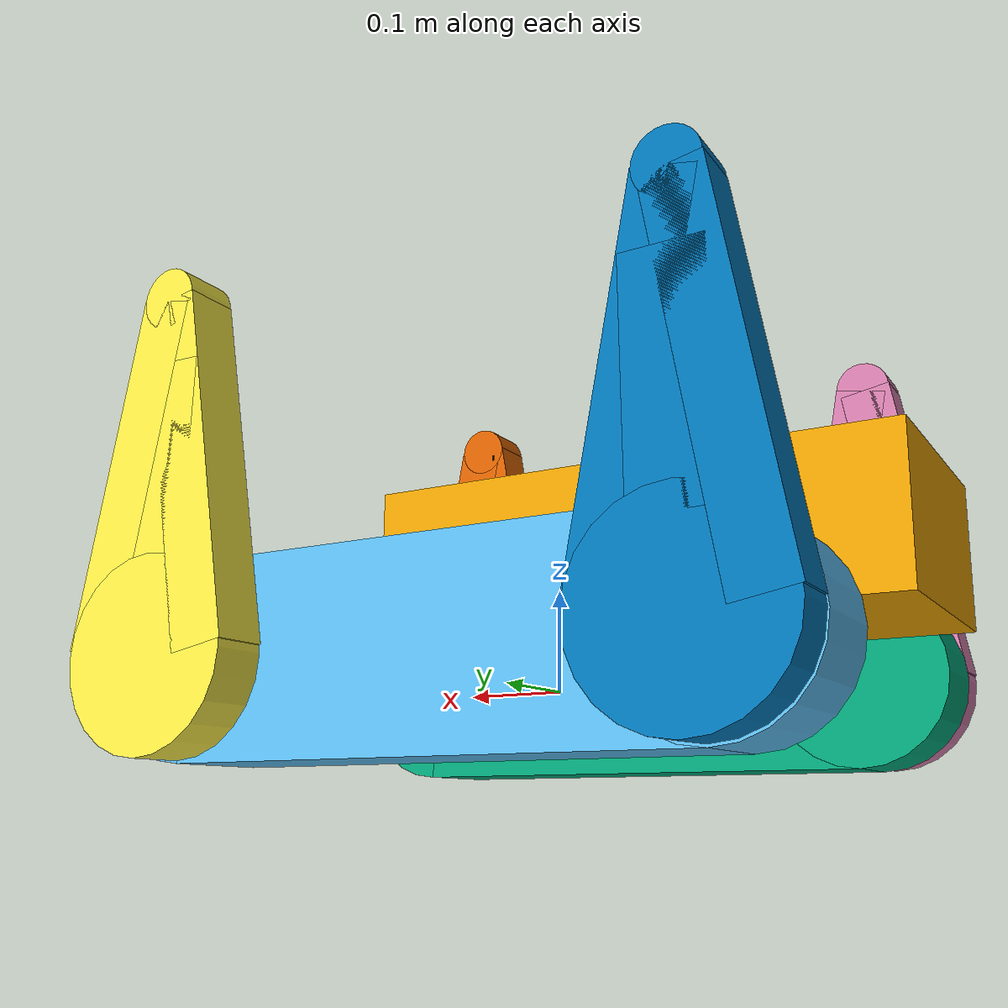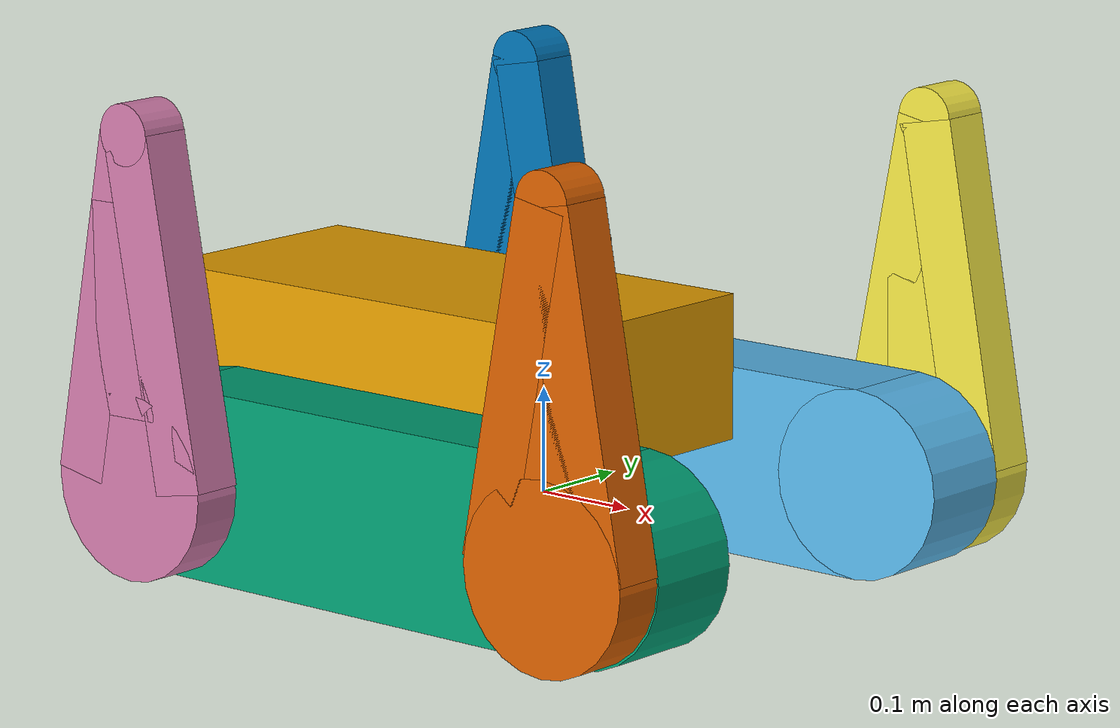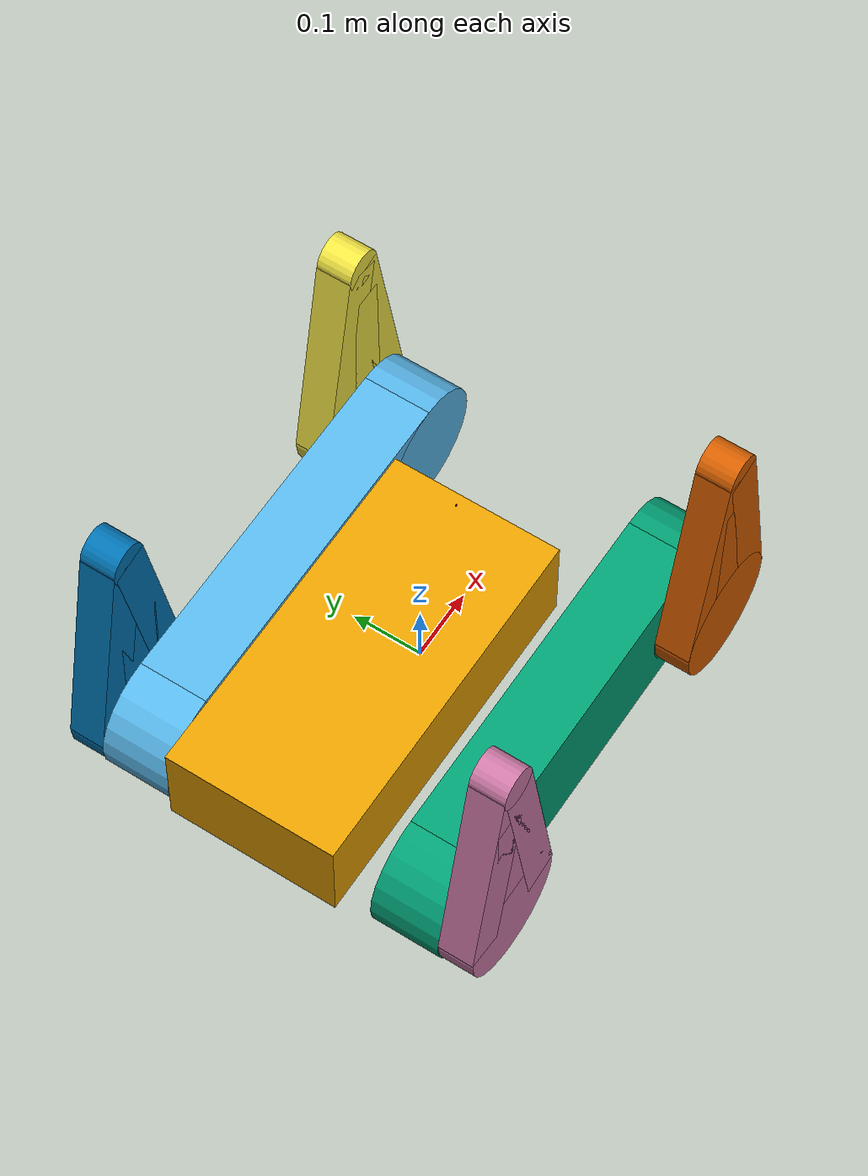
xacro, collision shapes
<?xml version="1.0"?>

<robot name="simple_tracked"
    xmlns:xacro="http://ros.org/wiki/xacro">
    <xacro:arg name="gpu" default="false" />
    <xacro:property name="gpu" value="$(arg gpu)" />

    <gazebo>
        <gui>
            <plugin name="keyboard" filename="/usr/lib/x86_64-linux-gnu/gazebo-11/plugins/libKeyboardGUIPlugin.so" />
        </gui>
    </gazebo>

    <link name="base_link">
        <!-- 惯性属性 -->
        <inertial>
            <origin xyz="-0.122 0 0.118" rpy="1.5708 0 0" />
            <mass value="13.14" />
            <inertia ixx="0.10019" ixy="0" ixz="0" iyy="0.345043" iyz="0" izz="0.302044" />
        </inertial>

        <!-- 碰撞体 -->
        <collision name="base_link_collision">
            <origin xyz="-0.122 0 0.118" rpy="0 0 0" />
            <geometry>
                <box size="0.50017 0.24093 0.139" />
            </geometry>
        </collision>

        <!-- 视觉元素 -->
        <visual name="base_link_visual">
            <origin xyz="-0.122 0 0.118" rpy="0 0 0" />
            <geometry>
                <box size="0.50017 0.24093 0.139" />
            </geometry>
        </visual>
    </link>

    <link name="left_track">
        <!-- 惯性属性 -->
        <inertial>
            <origin xyz="0 0 0.0141" rpy="0 0 0" />
            <mass value="6.06" />
            <inertia ixx="0.002731" ixy="0" ixz="0" iyy="0.032554" iyz="0.000015" izz="0.031391" />
        </inertial>

        <!-- 碰撞体1 -->
        <collision name="left_track_collision">
            <origin xyz="0 0 0.01855" rpy="1.5708 0 1.5708" />
            <geometry>
                <box size="0.09728 0.18094 0.5" />
            </geometry>
        </collision>

        <!-- 碰撞体2 -->
        <collision name="left_track_collision_1">
            <origin xyz="0.25 0 0.01855" rpy="1.5708 0 0" />
            <geometry>
                <cylinder length="0.09728" radius="0.09047" />
            </geometry>
            <!-- 同上，物理属性需通过插件或其他方式设置 -->
        </collision>

        <!-- 碰撞体3 -->
        <collision name="left_track_collision_2">
            <origin xyz="-0.25 0 0.01855" rpy="1.5708 0 0" />
            <geometry>
                <cylinder length="0.09728" radius="0.09047" />
            </geometry>
            <!-- 同上，物理属性需通过插件或其他方式设置 -->
        </collision>

        <!-- 视觉元素1 -->
        <visual name="left_track_visual">
            <origin xyz="0 0 0.01855" rpy="1.5708 0 1.5708" />
            <geometry>
                <box size="0.09728 0.18094 0.5" />
            </geometry>
        </visual>

        <!-- 视觉元素2 -->
        <visual name="left_track_visual_1">
            <origin xyz="0.25 0 0.01855" rpy="1.5708 0 0" />
            <geometry>
                <cylinder length="0.09728" radius="0.09047" />
            </geometry>
        </visual>

        <!-- 视觉元素3 -->
        <visual name="left_track_visual_2">
            <origin xyz="-0.25 0 0.01855" rpy="1.5708 0 0" />
            <geometry>
                <cylinder length="0.09728" radius="0.09047" />
            </geometry>
        </visual>
    </link>

    <joint name="left_track_j" type="fixed">
        <parent link="base_link" />
        <child link="left_track" />
        <origin xyz="0 0.1985 0" rpy="0 0 0" />
    </joint>

    <link name="right_track">
        <!-- 惯性属性 -->
        <inertial>
            <origin xyz="0 0 0.0141" rpy="0 0 0" />
            <mass value="6.06" />
            <inertia ixx="0.002731" ixy="0" ixz="0" iyy="0.032554" iyz="0.000015" izz="0.031391" />
        </inertial>

        <!-- 碰撞体1 -->
        <collision name="right_track_collision">
            <origin xyz="0 0 0.01855" rpy="1.5708 0 1.5708" />
            <geometry>
                <box size="0.09728 0.18094 0.5" />
            </geometry>
        </collision>

        <!-- 碰撞体2 -->
        <collision name="right_track_collision_1">
            <origin xyz="0.25 0 0.01855" rpy="1.5708 0 0" />
            <geometry>
                <cylinder length="0.09728" radius="0.09047" />
            </geometry>
        </collision>

        <!-- 碰撞体3 -->
        <collision name="right_track_collision_2">
            <origin xyz="-0.25 0 0.01855" rpy="1.5708 0 0" />
            <geometry>
                <cylinder length="0.09728" radius="0.09047" />
            </geometry>
        </collision>

        <!-- 视觉元素1 -->
        <visual name="right_track_visual">
            <origin xyz="0 0 0.01855" rpy="1.5708 0 1.5708" />
            <geometry>
                <box size="0.09728 0.18094 0.5" />
            </geometry>
        </visual>

        <!-- 视觉元素2 -->
        <visual name="right_track_visual_1">
            <origin xyz="0.25 0 0.01855" rpy="1.5708 0 0" />
            <geometry>
                <cylinder length="0.09728" radius="0.09047" />
            </geometry>
        </visual>

        <!-- 视觉元素3 -->
        <visual name="right_track_visual_2">
            <origin xyz="-0.25 0 0.01855" rpy="1.5708 0 0" />
            <geometry>
                <cylinder length="0.09728" radius="0.09047" />
            </geometry>
        </visual>
    </link>

    <joint name="right_track_j" type="fixed">
        <parent link="base_link" />
        <child link="right_track" />
        <origin xyz="0 -0.1985 0" rpy="0 0 0" />
    </joint>

    <link name="front_left_flipper">
        <!-- 惯性属性 -->
        <inertial>
            <origin xyz="0.08 0 0" rpy="0 0 0" />
            <mass value="0.75" />
            <inertia ixx="0.0017491" ixy="0.00000028512" ixz="0.0018277" iyy="0.012277" iyz="-0.00000036288" izz="0.010941" />
        </inertial>

        <!-- 碰撞体1 -->
        <collision name="front_left_flipper_collision_large_wheel_collision">
            <origin xyz="0 0 0" rpy="1.5708 0 0" />
            <geometry>
                <cylinder length="0.04981" radius="0.089" />
            </geometry>
        </collision>

        <!-- 碰撞体2 -->
        <collision name="front_left_flipper_collision_small_wheel_collision_1">
            <origin xyz="0.33 0 0" rpy="1.5708 0 0" />
            <geometry>
                <cylinder length="0.04981" radius="0.029" />
            </geometry>
        </collision>

        <!-- 碰撞体3 -->
        <collision name="front_left_flipper_collision_top_bar_collision_2">
            <origin xyz="0.165 0 0.0325" rpy="0 0.184162 0" />
            <geometry>
                <box size="0.33 0.04981 0.055" />
            </geometry>
        </collision>

        <!-- 碰撞体4 -->
        <collision name="front_left_flipper_collision_bottom_bar_collision_3">
            <origin xyz="0.165 0 -0.0325" rpy="0 -0.184162 0" />
            <geometry>
                <box size="0.33 0.04981 0.055" />
            </geometry>
        </collision>

        <!-- 碰撞体5 -->
        <collision name="front_left_flipper_collision_middle_bar_collision_4">
            <origin xyz="0.166 0 0.004" rpy="0 -0.02 0" />
            <geometry>
                <box size="0.2 0.04981 0.07" />
            </geometry>
        </collision>

        <!-- 视觉元素1 -->
        <visual name="front_left_flipper_visual_large_wheel_visual">
            <origin xyz="0 0 0" rpy="1.5708 0 0" />
            <geometry>
                <cylinder length="0.04981" radius="0.089" />
            </geometry>
        </visual>

        <!-- 视觉元素2 -->
        <visual name="front_left_flipper_visual_small_wheel_visual_1">
            <origin xyz="0.33 0 0" rpy="1.5708 0 0" />
            <geometry>
                <cylinder length="0.04981" radius="0.029" />
            </geometry>
        </visual>

        <!-- 视觉元素3 -->
        <visual name="front_left_flipper_visual_top_bar_visual_2">
            <origin xyz="0.165 0 0.0325" rpy="0 0.184162 0" />
            <geometry>
                <box size="0.33 0.04981 0.055" />
            </geometry>
        </visual>

        <!-- 视觉元素4 -->
        <visual name="front_left_flipper_visual_bottom_bar_visual_3">
            <origin xyz="0.165 0 -0.0325" rpy="0 -0.184162 0" />
            <geometry>
                <box size="0.33 0.04981 0.055" />
            </geometry>
        </visual>

        <!-- 视觉元素5 -->
        <visual name="front_left_flipper_visual_middle_bar_visual_4">
            <origin xyz="0.166 0 0.004" rpy="0 -0.02 0" />
            <geometry>
                <box size="0.2 0.04981 0.07" />
            </geometry>
        </visual>
    </link>

    <joint name="front_left_flipper_j" type="revolute">
        <parent link="left_track" />
        <child link="front_left_flipper" />

        <!-- 关节相对于父链接的位姿 -->
        <origin xyz="0.25 0.073545 0.0195" rpy="0 -1.57 0" />

        <!-- 旋转轴 -->
        <axis xyz="0 1 0" />

        <!-- 关节限制 -->
        <limit lower="0" upper="3.14" effort="10.0" velocity="1.0" />

        <!-- 动力学属性 -->
        <dynamics damping="0.0" friction="0.0" />
    </joint>

    <link name="rear_left_flipper">
        <!-- 惯性属性 -->
        <inertial>
            <origin xyz="0.08 0 0" rpy="0 0 0" />
            <mass value="0.75" />
            <inertia ixx="0.0017491" ixy="2.8512e-07" ixz="0.0018277" iyy="0.012277" iyz="-0.00000036288" izz="0.010941" />
        </inertial>

        <!-- 碰撞体1 -->
        <collision name="rear_left_flipper_collision_large_wheel_collision">
            <origin xyz="0 0 0" rpy="1.5708 0 0" />
            <geometry>
                <cylinder length="0.04981" radius="0.089" />
            </geometry>
        </collision>

        <!-- 碰撞体2 -->
        <collision name="rear_left_flipper_collision_small_wheel_collision_1">
            <origin xyz="0.33 0 0" rpy="1.5708 0 0" />
            <geometry>
                <cylinder length="0.04981" radius="0.029" />
            </geometry>
        </collision>

        <!-- 碰撞体3 -->
        <collision name="rear_left_flipper_collision_top_bar_collision_2">
            <origin xyz="0.165 0 0.0325" rpy="0 0.184162 0" />
            <geometry>
                <box size="0.33 0.04981 0.055" />
            </geometry>
        </collision>

        <!-- 碰撞体4 -->
        <collision name="rear_left_flipper_collision_bottom_bar_collision_3">
            <origin xyz="0.165 0 -0.0325" rpy="0 -0.184162 0" />
            <geometry>
                <box size="0.33 0.04981 0.055" />
            </geometry>
        </collision>

        <!-- 碰撞体5 -->
        <collision name="rear_left_flipper_collision_middle_bar_collision_4">
            <origin xyz="0.166 0 0.004" rpy="0 -0.02 0" />
            <geometry>
                <box size="0.2 0.04981 0.07" />
            </geometry>
        </collision>

        <!-- 视觉元素1 -->
        <visual name="rear_left_flipper_visual_large_wheel_visual">
            <origin xyz="0 0 0" rpy="1.5708 0 0" />
            <geometry>
                <cylinder length="0.04981" radius="0.089" />
            </geometry>
        </visual>

        <!-- 视觉元素2 -->
        <visual name="rear_left_flipper_visual_small_wheel_visual_1">
            <origin xyz="0.33 0 0" rpy="1.5708 0 0" />
            <geometry>
                <cylinder length="0.04981" radius="0.029" />
            </geometry>
        </visual>

        <!-- 视觉元素3 -->
        <visual name="rear_left_flipper_visual_top_bar_visual_2">
            <origin xyz="0.165 0 0.0325" rpy="0 0.184162 0" />
            <geometry>
                <box size="0.33 0.04981 0.055" />
            </geometry>
        </visual>

        <!-- 视觉元素4 -->
        <visual name="rear_left_flipper_visual_bottom_bar_visual_3">
            <origin xyz="0.165 0 -0.0325" rpy="0 -0.184162 0" />
            <geometry>
                <box size="0.33 0.04981 0.055" />
            </geometry>
        </visual>

        <!-- 视觉元素5 -->
        <visual name="rear_left_flipper_visual_middle_bar_visual_4">
            <origin xyz="0.166 0 0.004" rpy="0 -0.02 0" />
            <geometry>
                <box size="0.2 0.04981 0.07" />
            </geometry>
        </visual>
    </link>

    <joint name="rear_left_flipper_j" type="revolute">
        <!-- 父子链接 -->
        <parent link="left_track" />
        <child link="rear_left_flipper" />

        <!-- 关节在父链接坐标系中的位姿 -->
        <origin xyz="-0.25 0.073545 0.0195" rpy="3.14159 -1.57 0" />

        <!-- 旋转轴 -->
        <axis xyz="0 1 0" />

        <!-- 关节限制 -->
        <limit lower="0" upper="3.14" effort="10.0" velocity="1.0" />

        <!-- 动力学属性（URDF仅支持 damping / friction） -->
        <dynamics damping="0.0" friction="0.0" />

        <!-- 硬件接口通常放在传动装置里。若需要在joint中声明，可这样添加： -->
    </joint>

    <link name="front_right_flipper">
        <!-- 惯性属性 -->
        <inertial>
            <origin xyz="-0.08 0 0" rpy="0 0 0" />
            <mass value="0.75" />
            <inertia ixx="0.0017491" ixy="2.8512e-07" ixz="0.0018277" iyy="0.012277" iyz="-3.6288e-07" izz="0.010941" />
        </inertial>

        <!-- 碰撞体1 -->
        <collision name="front_right_flipper_collision_large_wheel_collision">
            <origin xyz="0 0 0" rpy="1.5708 0 0" />
            <geometry>
                <cylinder length="0.04981" radius="0.089" />
            </geometry>
        </collision>

        <!-- 碰撞体2 -->
        <collision name="front_right_flipper_collision_small_wheel_collision_1">
            <origin xyz="-0.33 0 0" rpy="1.5708 0 0" />
            <geometry>
                <cylinder length="0.04981" radius="0.029" />
            </geometry>
        </collision>

        <!-- 碰撞体3 -->
        <collision name="front_right_flipper_collision_top_bar_collision_2">
            <origin xyz="-0.165 0 0.0325" rpy="0 0.184162 -3.14159" />
            <geometry>
                <box size="0.33 0.04981 0.055" />
            </geometry>
        </collision>

        <!-- 碰撞体4 -->
        <collision name="front_right_flipper_collision_bottom_bar_collision_3">
            <origin xyz="-0.165 0 -0.0325" rpy="0 -0.184162 -3.14159" />
            <geometry>
                <box size="0.33 0.04981 0.055" />
            </geometry>
        </collision>

        <!-- 碰撞体5 -->
        <collision name="front_right_flipper_collision_middle_bar_collision_4">
            <origin xyz="-0.166 0 0.004" rpy="0 -0.02 -3.14159" />
            <geometry>
                <box size="0.2 0.04981 0.07" />
            </geometry>
        </collision>

        <!-- 视觉元素1 -->
        <visual name="front_right_flipper_visual_large_wheel_visual">
            <origin xyz="0 0 0" rpy="1.5708 0 0" />
            <geometry>
                <cylinder length="0.04981" radius="0.089" />
            </geometry>
        </visual>

        <!-- 视觉元素2 -->
        <visual name="front_right_flipper_visual_small_wheel_visual_1">
            <origin xyz="-0.33 0 0" rpy="1.5708 0 0" />
            <geometry>
                <cylinder length="0.04981" radius="0.029" />
            </geometry>
        </visual>

        <!-- 视觉元素3 -->
        <visual name="front_right_flipper_visual_top_bar_visual_2">
            <origin xyz="-0.165 0 0.0325" rpy="0 0.184162 -3.14159" />
            <geometry>
                <box size="0.33 0.04981 0.055" />
            </geometry>
        </visual>

        <!-- 视觉元素4 -->
        <visual name="front_right_flipper_visual_bottom_bar_visual_3">
            <origin xyz="-0.165 0 -0.0325" rpy="0 -0.184162 -3.14159" />
            <geometry>
                <box size="0.33 0.04981 0.055" />
            </geometry>
        </visual>

        <!-- 视觉元素5 -->
        <visual name="front_right_flipper_visual_middle_bar_visual_4">
            <origin xyz="-0.166 0 0.004" rpy="0 -0.02 -3.14159" />
            <geometry>
                <box size="0.2 0.04981 0.07" />
            </geometry>
        </visual>
    </link>

    <joint name="front_right_flipper_j" type="revolute">
        <parent link="right_track" />
        <child link="front_right_flipper" />

        <!-- 关节相对于父链接的位姿 -->
        <origin xyz="0.25 -0.073545 0.0195" rpy="3.14159 1.57 3.14159" />

        <!-- 旋转轴 -->
        <axis xyz="0 1 0" />

        <!-- 关节限制 -->
        <limit lower="0" upper="3.14" effort="10.0" velocity="1.0" />

        <!-- 动力学属性 -->
        <dynamics damping="0.0" friction="0.0" />
    </joint>

    <link name="rear_right_flipper">
        <!-- 惯性属性 -->
        <inertial>
            <origin xyz="-0.08 0 0" rpy="0 0 0" />
            <mass value="0.75" />
            <inertia ixx="0.0017491" ixy="2.8512e-07" ixz="0.0018277" iyy="0.012277" iyz="-3.6288e-07" izz="0.010941" />
        </inertial>

        <!-- 碰撞体1 -->
        <collision name="rear_right_flipper_collision_large_wheel_collision">
            <origin xyz="0 0 0" rpy="1.5708 0 0" />
            <geometry>
                <cylinder length="0.04981" radius="0.089" />
            </geometry>
        </collision>

        <!-- 碰撞体2 -->
        <collision name="rear_right_flipper_collision_small_wheel_collision_1">
            <origin xyz="-0.33 0 0" rpy="1.5708 0 0" />
            <geometry>
                <cylinder length="0.04981" radius="0.029" />
            </geometry>
        </collision>

        <!-- 碰撞体3 -->
        <collision name="rear_right_flipper_collision_top_bar_collision_2">
            <origin xyz="-0.165 0 0.0325" rpy="0 0.184162 -3.14159" />
            <geometry>
                <box size="0.33 0.04981 0.055" />
            </geometry>
        </collision>

        <!-- 碰撞体4 -->
        <collision name="rear_right_flipper_collision_bottom_bar_collision_3">
            <origin xyz="-0.165 0 -0.0325" rpy="0 -0.184162 -3.14159" />
            <geometry>
                <box size="0.33 0.04981 0.055" />
            </geometry>
        </collision>

        <!-- 碰撞体5 -->
        <collision name="rear_right_flipper_collision_middle_bar_collision_4">
            <origin xyz="-0.166 0 0.004" rpy="0 -0.02 -3.14159" />
            <geometry>
                <box size="0.2 0.04981 0.07" />
            </geometry>
        </collision>

        <!-- 视觉元素1 -->
        <visual name="rear_right_flipper_visual_large_wheel_visual">
            <origin xyz="0 0 0" rpy="1.5708 0 0" />
            <geometry>
                <cylinder length="0.04981" radius="0.089" />
            </geometry>
        </visual>

        <!-- 视觉元素2 -->
        <visual name="rear_right_flipper_visual_small_wheel_visual_1">
            <origin xyz="-0.33 0 0" rpy="1.5708 0 0" />
            <geometry>
                <cylinder length="0.04981" radius="0.029" />
            </geometry>
        </visual>

        <!-- 视觉元素3 -->
        <visual name="rear_right_flipper_visual_top_bar_visual_2">
            <origin xyz="-0.165 0 0.0325" rpy="0 0.184162 -3.14159" />
            <geometry>
                <box size="0.33 0.04981 0.055" />
            </geometry>
        </visual>

        <!-- 视觉元素4 -->
        <visual name="rear_right_flipper_visual_bottom_bar_visual_3">
            <origin xyz="-0.165 0 -0.0325" rpy="0 -0.184162 -3.14159" />
            <geometry>
                <box size="0.33 0.04981 0.055" />
            </geometry>
        </visual>

        <!-- 视觉元素5 -->
        <visual name="rear_right_flipper_visual_middle_bar_visual_4">
            <origin xyz="-0.166 0 0.004" rpy="0 -0.02 -3.14159" />
            <geometry>
                <box size="0.2 0.04981 0.07" />
            </geometry>
        </visual>
    </link>

    <joint name="rear_right_flipper_j" type="revolute">
        <!-- 父子链接 -->
        <parent link="right_track" />
        <child link="rear_right_flipper" />

        <!-- 关节在父链接坐标系中的位姿（根据实际需求修改） -->
        <origin xyz="-0.25 -0.073545 0.0195" rpy="0 1.57 3.14159" />

        <!-- 旋转轴 -->
        <axis xyz="0 1 0" />

        <!-- 关节限制 -->
        <limit lower="0" upper="3.14" effort="10.0" velocity="1.0" />

        <!-- 动力学属性（URDF仅支持 damping / friction） -->
        <dynamics damping="0.0" friction="0.0" />

    </joint>
    <joint name="lidar_joint" type="fixed">
        <origin rpy="0 0 0" xyz="0.08 0 0.21" />
        <parent link="base_link" />
        <child link="mid_360" />
    </joint>

    <link name="mid_360">
        <inertial>
            <mass value="0.1" />
            <origin xyz="0 0 0" />
            <inertia ixx="0.0001" ixy="0" ixz="0" iyy="0.0001" iyz="0" izz="0.0001" />
        </inertial>
        <visual>
            <origin xyz="0 0 0" />
            <geometry>
                <mesh filename="package://livox_laser_simulation/meshes/livox_mid-360-90x_new.dae" />
            </geometry>
        </visual>
    </link>

    <!-- Gazebo requires the velodyne_gazebo_plugins package -->
    <gazebo reference="mid_360">
        <sensor type="ray" name="laser_livox">
            <pose>0 0 0.05 0 0 0</pose>
            <visualize>true</visualize>
            <always_on>True</always_on>
            <update_rate>10</update_rate>
            <!-- This ray plgin is only for visualization. -->
            <plugin name="gazebo_ros_laser_controller" filename="liblivox_laser_simulation.so">
                <ray>
                    <scan>
                        <horizontal>
                            <samples>100</samples>
                            <resolution>1</resolution>
                            <min_angle>-3.1415926535897931</min_angle>
                            <max_angle>3.1415926535897931</max_angle>
                        </horizontal>
                        <vertical>
                            <samples>50</samples>
                            <resolution>1</resolution>
                            <min_angle>-3.1415926535897931</min_angle>
                            <max_angle>3.1415926535897931</max_angle>
                        </vertical>
                    </scan>
                    <range>
                        <min>0.1</min>
                        <max>40</max>
                        <resolution>1</resolution>
                    </range>
                    <noise>
                        <type>gaussian</type>
                        <mean>0.0</mean>
                        <stddev>0.0</stddev>
                    </noise>
                </ray>
                <visualize>True</visualize>
                <samples>20000</samples>
                <downsample>1</downsample>
                <csv_file_name>mid360-real-centr.csv</csv_file_name>
                <publish_pointcloud_type>3</publish_pointcloud_type>
                <ros_topic>/livox/lidar</ros_topic>
                <frameName>mid_360</frameName>
            </plugin>
        </sensor>
    </gazebo>

    <joint name="imu_j" type="fixed">
        <origin rpy="0 0 0" xyz="0.08 0 0.25" />
        <parent link="base_link"/>
        <child link="imu_link"/>
    </joint>

    <link name="imu_link">
        <inertial>
            <mass value="0.01"/>
            <inertia ixx="0.01" ixy="0.0" ixz="0.0" iyy="0.01" iyz="0.0" izz="0.01"/>
        </inertial>
        <collision name="imu_collision">
            <geometry>
                <box size="0.001 0.001 0.005"/>
            </geometry>
        </collision>
        <visual name="imu_visual">
            <geometry>
                <box size="0.001 0.001 0.005"/>
            </geometry>
            <material name="imu_material">
                <color rgba="0.421 0.225 0.0 1.0"/>
            </material>
        </visual>
    </link>

    <!-- IMU Sensor -->
    <gazebo reference="imu_link">
        <sensor name="imu_sensor" type="imu">
            <always_on>true</always_on>
            <update_rate>100</update_rate>
            <visualize>true</visualize>
            <plugin name="imu_plugin" filename="libgazebo_ros_imu_sensor.so">
                <topicName>imu</topicName>
                <bodyName>imu_link</bodyName>
                <updateRateHZ>10.0</updateRateHZ>
                <gaussianNoise>0.0</gaussianNoise>
                <xyzOffset>0 0 0</xyzOffset>
                <rpyOffset>0 0 0</rpyOffset>
                <frameName>imu_link</frameName>
                <initialOrientationAsReference>false</initialOrientationAsReference>
            </plugin>
            <pose>0 0 0 0 0 0</pose>
        </sensor>
    </gazebo>

    <!-- Transmission for front_left_flipper_j -->
    <transmission name="tran1">
        <type>transmission_interface/SimpleTransmission</type>
        <joint name="front_left_flipper_j">
            <hardwareInterface>hardware_interface/EffortJointInterface</hardwareInterface>
        </joint>
        <actuator name="motor1">
            <hardwareInterface>hardware_interface/EffortJointInterface</hardwareInterface>
            <mechanicalReduction>1</mechanicalReduction>
        </actuator>
    </transmission>

    <!-- Transmission for rear_left_flipper_j -->
    <transmission name="tran2">
        <type>transmission_interface/SimpleTransmission</type>
        <joint name="rear_left_flipper_j">
            <hardwareInterface>hardware_interface/EffortJointInterface</hardwareInterface>
        </joint>
        <actuator name="motor2">
            <hardwareInterface>hardware_interface/EffortJointInterface</hardwareInterface>
            <mechanicalReduction>1</mechanicalReduction>
        </actuator>
    </transmission>

    <!-- Transmission for front_right_flipper_j -->
    <transmission name="tran3">
        <type>transmission_interface/SimpleTransmission</type>
        <joint name="front_right_flipper_j">
            <hardwareInterface>hardware_interface/EffortJointInterface</hardwareInterface>
        </joint>
        <actuator name="motor3">
            <hardwareInterface>hardware_interface/EffortJointInterface</hardwareInterface>
            <mechanicalReduction>1</mechanicalReduction>
        </actuator>
    </transmission>

    <!-- Transmission for rear_right_flipper_j -->
    <transmission name="tran4">
        <type>transmission_interface/SimpleTransmission</type>
        <joint name="rear_right_flipper_j">
            <hardwareInterface>hardware_interface/EffortJointInterface</hardwareInterface>
        </joint>
        <actuator name="motor4">
            <hardwareInterface>hardware_interface/EffortJointInterface</hardwareInterface>
            <mechanicalReduction>1</mechanicalReduction>
        </actuator>
    </transmission>

    <!-- Gazebo Plugins -->
    <gazebo>

        <plugin name="simple_tracked_vehicle" filename="/usr/lib/x86_64-linux-gnu/gazebo-11/plugins/libSimpleTrackedVehiclePlugin.so">

            <left_flipper>front_left_flipper</left_flipper>
            <left_flipper>rear_left_flipper</left_flipper>
            <right_flipper>front_right_flipper</right_flipper>
            <right_flipper>rear_right_flipper</right_flipper>
            <body>base_link</body>

            <left_track>left_track</left_track>
            <right_track>right_track</right_track>

            <track_mu>2</track_mu>
            <track_mu2>0.5</track_mu2>
        </plugin>

        <plugin name="keyboard_control" filename="/usr/lib/x86_64-linux-gnu/gazebo-11/plugins/libKeysToCmdVelPlugin.so">
            <publish_as_twist>true</publish_as_twist>
            <cmd_vel_topic>~/simple_tracked/cmd_vel_twist</cmd_vel_topic>
        </plugin>
        <!-- Gazebo ROS Control Plugin -->
        <plugin name="gazebo_ros_control" filename="libgazebo_ros_control.so">
            <robotNamespace>/simple_tracked</robotNamespace>
            <controlPeriod>0.001</controlPeriod>
            <robotSimType>gazebo_ros_control/DefaultRobotHWSim</robotSimType>
        </plugin>

        <!-- setup of the interface -->
        <plugin name='tracked_vehicle_interface' filename='libgazebo_ros_tracked_vehicle_interface.so'>
            <commandROSTopic>/cmd_vel</commandROSTopic>
            <commandIGNTopic>~/simple_tracked/cmd_vel_twist</commandIGNTopic>

            <robotBaseFrame>base_link</robotBaseFrame>

            <tracks_separation>0.571</tracks_separation>
            <publishOdomTF>true</publishOdomTF>
            <updateRate>100.0</updateRate>

            <!-- [encoder,world] - choose world for ground truth -->
        </plugin>

        <!-- Keyboard Control Plugin -->
    </gazebo>

</robot>
